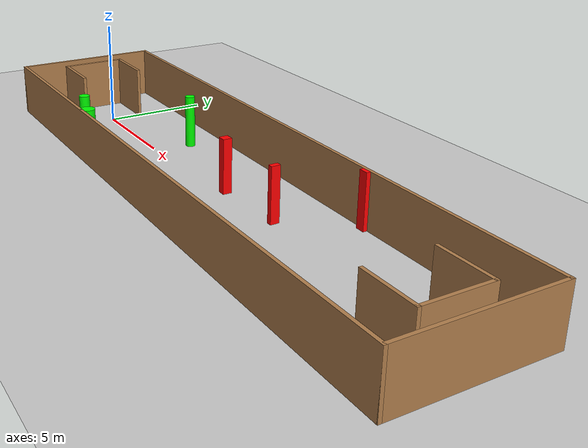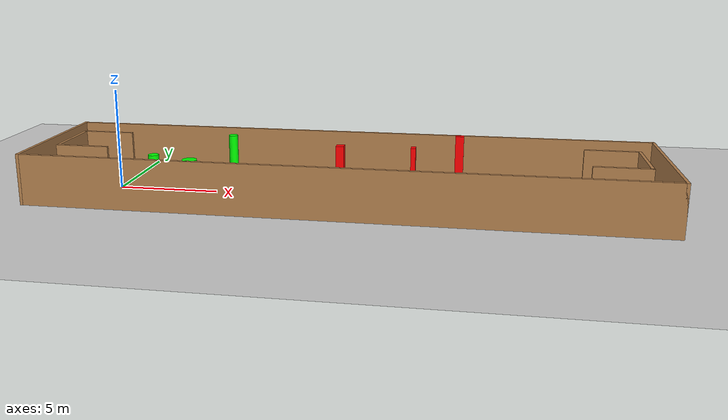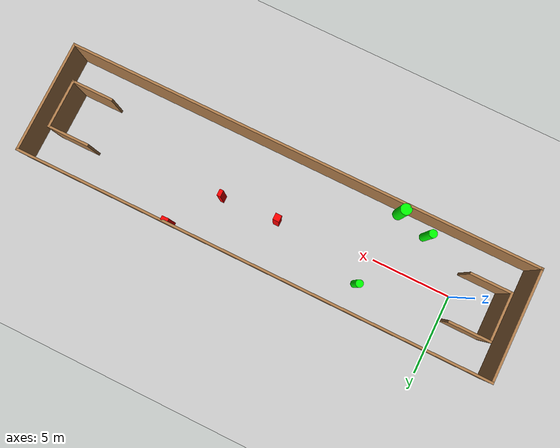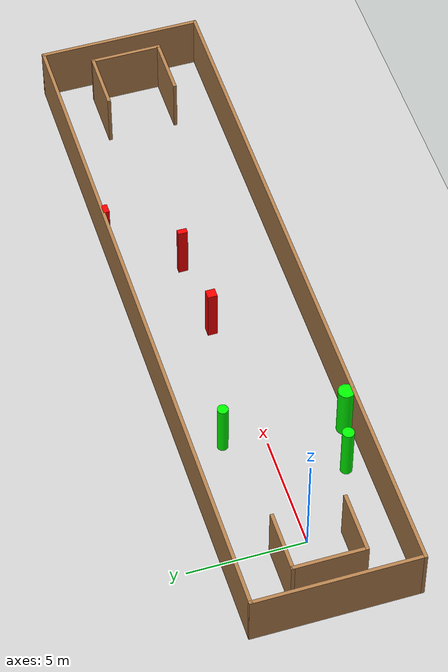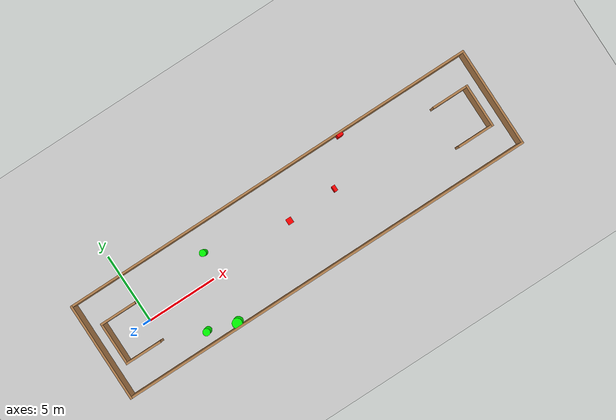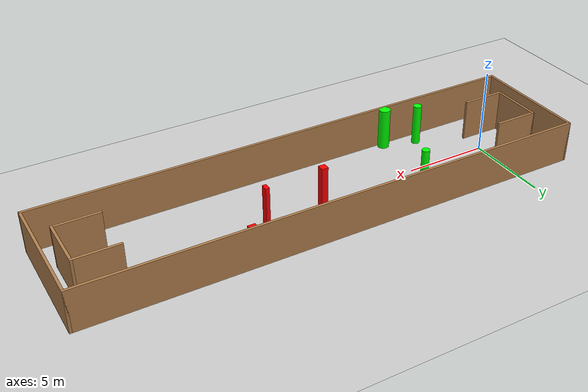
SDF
<sdf version="1.7">
 <world name="default">
  <light name="sun" type="directional">
   <pose>0 0 10 0 -0 0</pose>
   <diffuse>0.8 0.8 0.8 1</diffuse>
   <specular>0.2 0.2 0.2 1</specular>
   <attenuation>
    <range>1000</range>
    <constant>0.9</constant>
    <linear>0.01</linear>
    <quadratic>0.001</quadratic>
   </attenuation>
   <direction>-0.5 0.1 -0.9</direction>
   <spot><inner_angle>0</inner_angle><outer_angle>0</outer_angle><falloff>0</falloff></spot>
  </light>
  <model name="ground_plane">
   <static>1</static>
   <link name="link">
    <collision name="collision">
     <geometry><plane><normal>0 0 1</normal><size>100 100</size></plane></geometry>
     <surface>
      <contact><collide_bitmask>65535</collide_bitmask></contact>
      <friction><ode><mu>100</mu><mu2>50</mu2></ode></friction>
     </surface>
    </collision>
    <visual name="visual">
     <cast_shadows>0</cast_shadows>
     <geometry><plane><normal>0 0 1</normal><size>100 100</size></plane></geometry>
     <material>
      <script><uri>file://media/materials/scripts/gazebo.material</uri><name>Gazebo/Grey</name></script>
     </material>
    </visual>
   </link>
  </model>
  <gravity>0 0 -9.8</gravity>
  <magnetic_field>6e-06 2.3e-05 -4.2e-05</magnetic_field>
  <atmosphere type="adiabatic"/>
  <physics type="ode">
   <max_step_size>0.001</max_step_size>
   <real_time_factor>1</real_time_factor>
   <real_time_update_rate>1000</real_time_update_rate>
  </physics>
  <scene><ambient>0.4 0.4 0.4 1</ambient><background>0.7 0.7 0.7 1</background><shadows>1</shadows></scene>
  <spherical_coordinates>
   <surface_model>EARTH_WGS84</surface_model>
   <latitude_deg>0</latitude_deg>
   <longitude_deg>0</longitude_deg>
   <elevation>0</elevation>
   <heading_deg>0</heading_deg>
  </spherical_coordinates>
  <model name="my_base_walls">
   <link name="Wall_0">
    <collision name="Wall_0_Collision">
     <geometry><box><size>7.15 0.15 2.5</size></box></geometry>
     <pose>0 0 1.25 0 -0 0</pose>
    </collision>
    <visual name="Wall_0_Visual">
     <pose>0 0 1.25 0 -0 0</pose>
     <geometry><box><size>7.15 0.15 2.5</size></box></geometry>
     <material>
      <script><uri>file://media/materials/scripts/gazebo.material</uri><name>Gazebo/Wood</name></script>
      <ambient>1 1 1 1</ambient>
     </material>
     <meta><layer>0</layer></meta>
    </visual>
    <pose>-15 0 0 0 -0 1.5708</pose>
   </link>
   <link name="Wall_10">
    <collision name="Wall_10_Collision">
     <geometry><box><size>2.65 0.15 2.5</size></box></geometry>
     <pose>0 0 1.25 0 -0 0</pose>
    </collision>
    <visual name="Wall_10_Visual">
     <pose>0 0 1.25 0 -0 0</pose>
     <geometry><box><size>2.65 0.15 2.5</size></box></geometry>
     <material>
      <script><uri>file://media/materials/scripts/gazebo.material</uri><name>Gazebo/Wood</name></script>
      <ambient>1 1 1 1</ambient>
     </material>
     <meta><layer>0</layer></meta>
    </visual>
    <pose>-12.75 -1.5 0 0 -0 0</pose>
   </link>
   <link name="Wall_12">
    <collision name="Wall_12_Collision">
     <geometry><box><size>2.65 0.15 2.5</size></box></geometry>
     <pose>0 0 1.25 0 -0 0</pose>
    </collision>
    <visual name="Wall_12_Visual">
     <pose>0 0 1.25 0 -0 0</pose>
     <geometry><box><size>2.65 0.15 2.5</size></box></geometry>
     <material>
      <script><uri>file://media/materials/scripts/gazebo.material</uri><name>Gazebo/Wood</name></script>
      <ambient>1 1 1 1</ambient>
     </material>
     <meta><layer>0</layer></meta>
    </visual>
    <pose>-12.75 1.5 0 0 -0 0</pose>
   </link>
   <link name="Wall_14">
    <collision name="Wall_14_Collision">
     <geometry><box><size>3.15 0.15 2.5</size></box></geometry>
     <pose>0 0 1.25 0 -0 0</pose>
    </collision>
    <visual name="Wall_14_Visual">
     <pose>0 0 1.25 0 -0 0</pose>
     <geometry><box><size>3.15 0.15 2.5</size></box></geometry>
     <material>
      <script><uri>file://media/materials/scripts/gazebo.material</uri><name>Gazebo/Wood</name></script>
      <ambient>1 1 1 1</ambient>
     </material>
     <meta><layer>0</layer></meta>
    </visual>
    <pose>14 0 0 0 -0 -1.5708</pose>
   </link>
   <link name="Wall_15">
    <collision name="Wall_15_Collision">
     <geometry><box><size>2.65 0.15 2.5</size></box></geometry>
     <pose>0 0 1.25 0 -0 0</pose>
    </collision>
    <visual name="Wall_15_Visual">
     <pose>0 0 1.25 0 -0 0</pose>
     <geometry><box><size>2.65 0.15 2.5</size></box></geometry>
     <material>
      <script><uri>file://media/materials/scripts/gazebo.material</uri><name>Gazebo/Wood</name></script>
      <ambient>1 1 1 1</ambient>
     </material>
     <meta><layer>0</layer></meta>
    </visual>
    <pose>12.75 -1.5 0 0 -0 3.14159</pose>
   </link>
   <link name="Wall_17">
    <collision name="Wall_17_Collision">
     <geometry><box><size>2.65 0.15 2.5</size></box></geometry>
     <pose>0 0 1.25 0 -0 0</pose>
    </collision>
    <visual name="Wall_17_Visual">
     <pose>0 0 1.25 0 -0 0</pose>
     <geometry><box><size>2.65 0.15 2.5</size></box></geometry>
     <material>
      <script><uri>file://media/materials/scripts/gazebo.material</uri><name>Gazebo/Wood</name></script>
      <ambient>1 1 1 1</ambient>
     </material>
     <meta><layer>0</layer></meta>
    </visual>
    <pose>12.75 1.5 0 0 -0 3.14159</pose>
   </link>
   <link name="Wall_2">
    <collision name="Wall_2_Collision">
     <geometry><box><size>30.15 0.15 2.5</size></box></geometry>
     <pose>0 0 1.25 0 -0 0</pose>
    </collision>
    <visual name="Wall_2_Visual">
     <pose>0 0 1.25 0 -0 0</pose>
     <geometry><box><size>30.15 0.15 2.5</size></box></geometry>
     <material>
      <script><uri>file://media/materials/scripts/gazebo.material</uri><name>Gazebo/Wood</name></script>
      <ambient>1 1 1 1</ambient>
     </material>
     <meta><layer>0</layer></meta>
    </visual>
    <pose>-0 -3.5 0 0 -0 0</pose>
   </link>
   <link name="Wall_4">
    <collision name="Wall_4_Collision">
     <geometry><box><size>30.15 0.15 2.5</size></box></geometry>
     <pose>0 0 1.25 0 -0 0</pose>
    </collision>
    <visual name="Wall_4_Visual">
     <pose>0 0 1.25 0 -0 0</pose>
     <geometry><box><size>30.15 0.15 2.5</size></box></geometry>
     <material>
      <script><uri>file://media/materials/scripts/gazebo.material</uri><name>Gazebo/Wood</name></script>
      <ambient>1 1 1 1</ambient>
     </material>
     <meta><layer>0</layer></meta>
    </visual>
    <pose>-0 3.5 0 0 -0 0</pose>
   </link>
   <link name="Wall_6">
    <collision name="Wall_6_Collision">
     <geometry><box><size>7.15 0.15 2.5</size></box></geometry>
     <pose>0 0 1.25 0 -0 0</pose>
    </collision>
    <visual name="Wall_6_Visual">
     <pose>0 0 1.25 0 -0 0</pose>
     <geometry><box><size>7.15 0.15 2.5</size></box></geometry>
     <material>
      <script><uri>file://media/materials/scripts/gazebo.material</uri><name>Gazebo/Wood</name></script>
      <ambient>1 1 1 1</ambient>
     </material>
     <meta><layer>0</layer></meta>
    </visual>
    <pose>15 0 0 0 -0 -1.5708</pose>
   </link>
   <link name="Wall_9">
    <collision name="Wall_9_Collision">
     <geometry><box><size>3.15 0.15 2.5</size></box></geometry>
     <pose>0 0 1.25 0 -0 0</pose>
    </collision>
    <visual name="Wall_9_Visual">
     <pose>0 0 1.25 0 -0 0</pose>
     <geometry><box><size>3.15 0.15 2.5</size></box></geometry>
     <material>
      <script><uri>file://media/materials/scripts/gazebo.material</uri><name>Gazebo/Wood</name></script>
      <ambient>1 1 1 1</ambient>
     </material>
     <meta><layer>0</layer></meta>
    </visual>
    <pose>-14 0 0 0 -0 -1.5708</pose>
   </link>
   <static>1</static>
   <pose>11.5 0 0 0 -0 0</pose>
  </model>
  <model name="cylinder1">
   <static>1</static>
   <link name="link">
    <inertial>
     <mass>1</mass>
     <inertia><ixx>0.5</ixx><ixy>0</ixy><ixz>0</ixz><iyy>0.5</iyy><iyz>0</iyz><izz>1</izz></inertia>
    </inertial>
    <collision name="collision">
     <geometry><cylinder><radius>0.2513896059741094</radius><length>2.5</length></cylinder></geometry>
    </collision>
    <visual name="visual">
     <geometry><cylinder><radius>0.2513896059741094</radius><length>2.5</length></cylinder></geometry>
     <material>
      <ambient>0 1 0 1</ambient>
      <diffuse>0 1 0 1</diffuse>
      <specular>0.1 0.1 0.1 1</specular>
      <emissive>0 0 0 0</emissive>
     </material>
    </visual>
   </link>
   <pose>2.8703442915374353 -2.60350941727105 1.25 0 0 0</pose>
  </model>
  <model name="cylinder2">
   <static>1</static>
   <link name="link">
    <inertial>
     <mass>1</mass>
     <inertia><ixx>0.5</ixx><ixy>0</ixy><ixz>0</ixz><iyy>0.5</iyy><iyz>0</iyz><izz>1</izz></inertia>
    </inertial>
    <collision name="collision">
     <geometry><cylinder><radius>0.34480661482167785</radius><length>2.5</length></cylinder></geometry>
    </collision>
    <visual name="visual">
     <geometry><cylinder><radius>0.34480661482167785</radius><length>2.5</length></cylinder></geometry>
     <material>
      <ambient>0 1 0 1</ambient>
      <diffuse>0 1 0 1</diffuse>
      <specular>0.1 0.1 0.1 1</specular>
      <emissive>0 0 0 0</emissive>
     </material>
    </visual>
   </link>
   <pose>4.830374820256372 -3.202460434251189 1.25 0 0 0</pose>
  </model>
  <model name="cylinder3">
   <static>1</static>
   <link name="link">
    <inertial>
     <mass>1</mass>
     <inertia><ixx>0.5</ixx><ixy>0</ixy><ixz>0</ixz><iyy>0.5</iyy><iyz>0</iyz><izz>1</izz></inertia>
    </inertial>
    <collision name="collision">
     <geometry><cylinder><radius>0.230003321937579</radius><length>2.5</length></cylinder></geometry>
    </collision>
    <visual name="visual">
     <geometry><cylinder><radius>0.230003321937579</radius><length>2.5</length></cylinder></geometry>
     <material>
      <ambient>0 1 0 1</ambient>
      <diffuse>0 1 0 1</diffuse>
      <specular>0.1 0.1 0.1 1</specular>
      <emissive>0 0 0 0</emissive>
     </material>
    </visual>
   </link>
   <pose>5.4360155766753095 1.786727009146543 1.25 0 0 0</pose>
  </model>
  <model name="box1">
   <static>1</static>
   <link name="link">
    <inertial>
     <mass>1</mass>
     <inertia><ixx>0.083</ixx><ixy>0</ixy><ixz>0</ixz><iyy>0.083</iyy><iyz>0</iyz><izz>0.083</izz></inertia>
    </inertial>
    <collision name="collision">
     <geometry><box><size>0.4279781043067288 0.2531660100862028 2.5</size></box></geometry>
    </collision>
    <visual name="visual">
     <geometry><box><size>0.4279781043067288 0.2531660100862028 2.5</size></box></geometry>
     <material>
      <ambient>1 0 0 1</ambient>
      <diffuse>1 0 0 1</diffuse>
      <specular>0.1 0.1 0.1 1</specular>
      <emissive>0 0 0 0</emissive>
     </material>
    </visual>
    <sensor name="my_contact" type="contact">
     <contact><collision>box_collision</collision><topic>__default_topic__</topic></contact>
    </sensor>
   </link>
   <pose>16.98395680533958 3.3622915563609306 1.25 0 0 0</pose>
  </model>
  <model name="box2">
   <static>1</static>
   <link name="link">
    <inertial>
     <mass>1</mass>
     <inertia><ixx>0.083</ixx><ixy>0</ixy><ixz>0</ixz><iyy>0.083</iyy><iyz>0</iyz><izz>0.083</izz></inertia>
    </inertial>
    <collision name="collision">
     <geometry><box><size>0.3899862465907268 0.41176393181543347 2.5</size></box></geometry>
    </collision>
    <visual name="visual">
     <geometry><box><size>0.3899862465907268 0.41176393181543347 2.5</size></box></geometry>
     <material>
      <ambient>1 0 0 1</ambient>
      <diffuse>1 0 0 1</diffuse>
      <specular>0.1 0.1 0.1 1</specular>
      <emissive>0 0 0 0</emissive>
     </material>
    </visual>
    <sensor name="my_contact" type="contact">
     <contact><collision>box_collision</collision><topic>__default_topic__</topic></contact>
    </sensor>
   </link>
   <pose>11.243360678790772 0.4588395661195124 1.25 0 0 0</pose>
  </model>
  <model name="box3">
   <static>1</static>
   <link name="link">
    <inertial>
     <mass>1</mass>
     <inertia><ixx>0.083</ixx><ixy>0</ixy><ixz>0</ixz><iyy>0.083</iyy><iyz>0</iyz><izz>0.083</izz></inertia>
    </inertial>
    <collision name="collision">
     <geometry><box><size>0.23122211464018455 0.4182211346402982 2.5</size></box></geometry>
    </collision>
    <visual name="visual">
     <geometry><box><size>0.23122211464018455 0.4182211346402982 2.5</size></box></geometry>
     <material>
      <ambient>1 0 0 1</ambient>
      <diffuse>1 0 0 1</diffuse>
      <specular>0.1 0.1 0.1 1</specular>
      <emissive>0 0 0 0</emissive>
     </material>
    </visual>
    <sensor name="my_contact" type="contact">
     <contact><collision>box_collision</collision><topic>__default_topic__</topic></contact>
    </sensor>
   </link>
   <pose>14.81020607944262 0.6274429228288652 1.25 0 0 0</pose>
  </model>
 </world>
</sdf>
